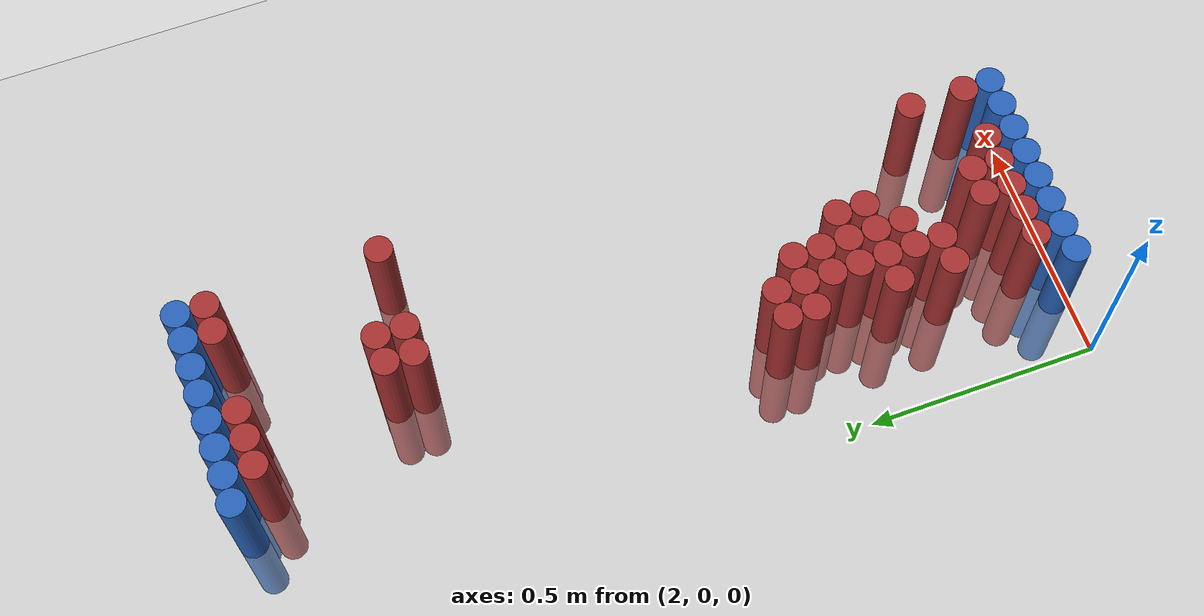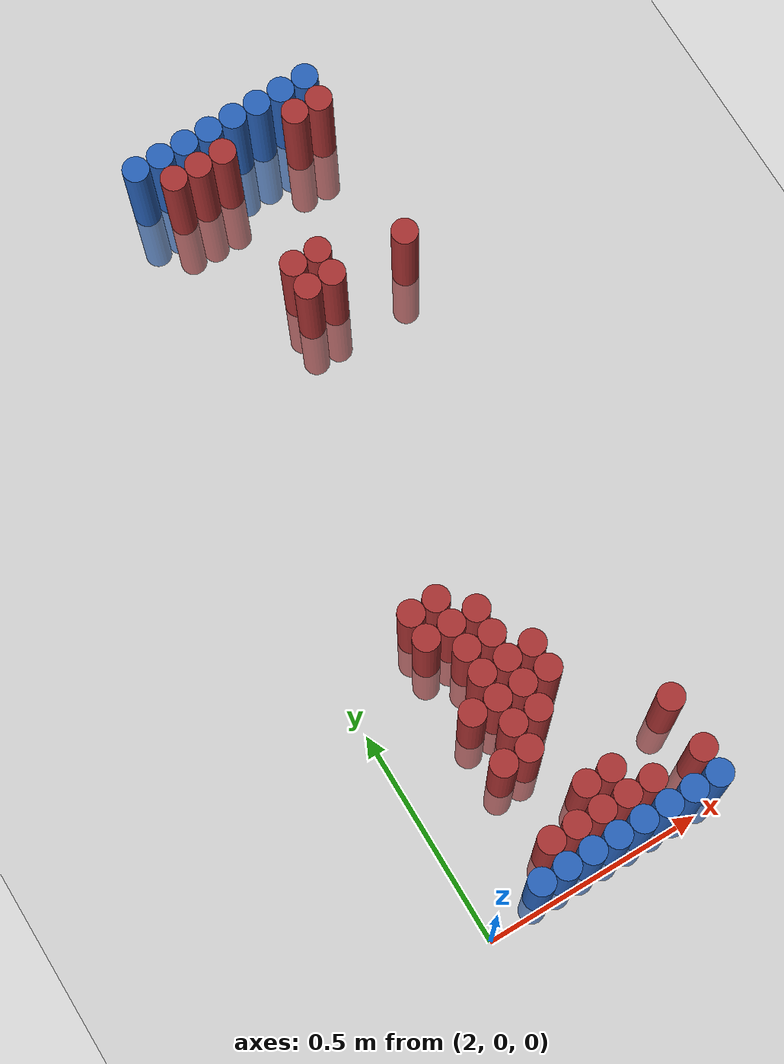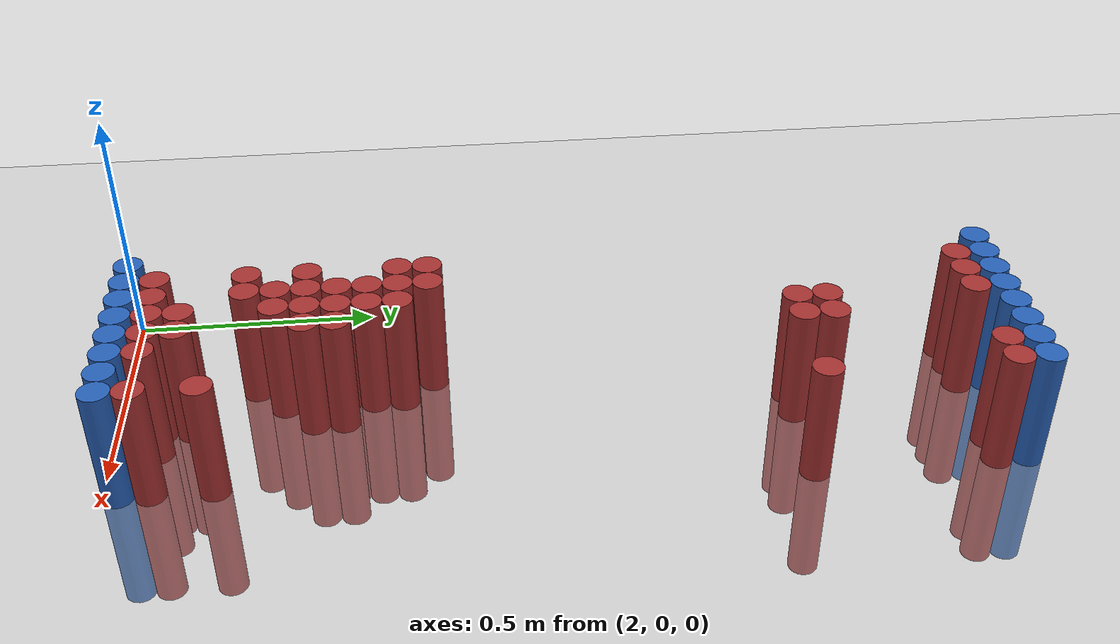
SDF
<sdf version="1.6">
 <world name="default">
  <model name="ground_plane">
   <static>1</static>
   <link name="link">
    <collision name="collision">
     <geometry><plane><normal>0 0 1</normal><size>100 100</size></plane></geometry>
     <surface><friction><ode><mu>100</mu><mu2>50</mu2></ode></friction></surface>
    </collision>
    <visual name="visual">
     <cast_shadows>0</cast_shadows>
     <geometry><plane><normal>0 0 1</normal><size>100 100</size></plane></geometry>
     <material>
      <script><uri>file://media/materials/scripts/gazebo.material</uri><name>Gazebo/Grey</name></script>
     </material>
    </visual>
   </link>
  </model>
  <model name="unit_cylinder_97">
   <static>1</static>
   <pose>2.190000 1.770000 0.000000 0.000000 0.000000 0.000000</pose>
   <link name="link">
    <inertial>
     <mass>1</mass>
     <inertia><ixx>0.145833</ixx><ixy>0</ixy><ixz>0</ixz><iyy>0.145833</iyy><iyz>0</iyz><izz>0.125</izz></inertia>
    </inertial>
    <collision name="collision">
     <geometry><cylinder><radius>0.030000</radius><length>0.5</length></cylinder></geometry>
    </collision>
    <visual name="visual">
     <geometry><cylinder><radius>0.030000</radius><length>0.5</length></cylinder></geometry>
     <material>
      <ambient>0.152000 0.379000 0.720000 1</ambient>
      <diffuse>0.152000 0.379000 0.720000 1</diffuse>
     </material>
     <material>
      <script><name>Gazebo/Grey</name><uri>file://media/materials/scripts/gazebo.material</uri></script>
     </material>
    </visual>
   </link>
  </model>
  <model name="unit_cylinder_98">
   <static>1</static>
   <pose>2.250000 1.770000 0.000000 0.000000 0.000000 0.000000</pose>
   <link name="link">
    <inertial>
     <mass>1</mass>
     <inertia><ixx>0.145833</ixx><ixy>0</ixy><ixz>0</ixz><iyy>0.145833</iyy><iyz>0</iyz><izz>0.125</izz></inertia>
    </inertial>
    <collision name="collision">
     <geometry><cylinder><radius>0.030000</radius><length>0.5</length></cylinder></geometry>
    </collision>
    <visual name="visual">
     <geometry><cylinder><radius>0.030000</radius><length>0.5</length></cylinder></geometry>
     <material>
      <ambient>0.152000 0.379000 0.720000 1</ambient>
      <diffuse>0.152000 0.379000 0.720000 1</diffuse>
     </material>
     <material>
      <script><name>Gazebo/Grey</name><uri>file://media/materials/scripts/gazebo.material</uri></script>
     </material>
    </visual>
   </link>
  </model>
  <model name="unit_cylinder_99">
   <static>1</static>
   <pose>2.310000 1.770000 0.000000 0.000000 0.000000 0.000000</pose>
   <link name="link">
    <inertial>
     <mass>1</mass>
     <inertia><ixx>0.145833</ixx><ixy>0</ixy><ixz>0</ixz><iyy>0.145833</iyy><iyz>0</iyz><izz>0.125</izz></inertia>
    </inertial>
    <collision name="collision">
     <geometry><cylinder><radius>0.030000</radius><length>0.5</length></cylinder></geometry>
    </collision>
    <visual name="visual">
     <geometry><cylinder><radius>0.030000</radius><length>0.5</length></cylinder></geometry>
     <material>
      <ambient>0.152000 0.379000 0.720000 1</ambient>
      <diffuse>0.152000 0.379000 0.720000 1</diffuse>
     </material>
     <material>
      <script><name>Gazebo/Grey</name><uri>file://media/materials/scripts/gazebo.material</uri></script>
     </material>
    </visual>
   </link>
  </model>
  <model name="unit_cylinder_100">
   <static>1</static>
   <pose>2.370000 1.770000 0.000000 0.000000 0.000000 0.000000</pose>
   <link name="link">
    <inertial>
     <mass>1</mass>
     <inertia><ixx>0.145833</ixx><ixy>0</ixy><ixz>0</ixz><iyy>0.145833</iyy><iyz>0</iyz><izz>0.125</izz></inertia>
    </inertial>
    <collision name="collision">
     <geometry><cylinder><radius>0.030000</radius><length>0.5</length></cylinder></geometry>
    </collision>
    <visual name="visual">
     <geometry><cylinder><radius>0.030000</radius><length>0.5</length></cylinder></geometry>
     <material>
      <ambient>0.152000 0.379000 0.720000 1</ambient>
      <diffuse>0.152000 0.379000 0.720000 1</diffuse>
     </material>
     <material>
      <script><name>Gazebo/Grey</name><uri>file://media/materials/scripts/gazebo.material</uri></script>
     </material>
    </visual>
   </link>
  </model>
  <model name="unit_cylinder_101">
   <static>1</static>
   <pose>2.430000 1.770000 0.000000 0.000000 0.000000 0.000000</pose>
   <link name="link">
    <inertial>
     <mass>1</mass>
     <inertia><ixx>0.145833</ixx><ixy>0</ixy><ixz>0</ixz><iyy>0.145833</iyy><iyz>0</iyz><izz>0.125</izz></inertia>
    </inertial>
    <collision name="collision">
     <geometry><cylinder><radius>0.030000</radius><length>0.5</length></cylinder></geometry>
    </collision>
    <visual name="visual">
     <geometry><cylinder><radius>0.030000</radius><length>0.5</length></cylinder></geometry>
     <material>
      <ambient>0.152000 0.379000 0.720000 1</ambient>
      <diffuse>0.152000 0.379000 0.720000 1</diffuse>
     </material>
     <material>
      <script><name>Gazebo/Grey</name><uri>file://media/materials/scripts/gazebo.material</uri></script>
     </material>
    </visual>
   </link>
  </model>
  <model name="unit_cylinder_102">
   <static>1</static>
   <pose>2.490000 1.770000 0.000000 0.000000 0.000000 0.000000</pose>
   <link name="link">
    <inertial>
     <mass>1</mass>
     <inertia><ixx>0.145833</ixx><ixy>0</ixy><ixz>0</ixz><iyy>0.145833</iyy><iyz>0</iyz><izz>0.125</izz></inertia>
    </inertial>
    <collision name="collision">
     <geometry><cylinder><radius>0.030000</radius><length>0.5</length></cylinder></geometry>
    </collision>
    <visual name="visual">
     <geometry><cylinder><radius>0.030000</radius><length>0.5</length></cylinder></geometry>
     <material>
      <ambient>0.152000 0.379000 0.720000 1</ambient>
      <diffuse>0.152000 0.379000 0.720000 1</diffuse>
     </material>
     <material>
      <script><name>Gazebo/Grey</name><uri>file://media/materials/scripts/gazebo.material</uri></script>
     </material>
    </visual>
   </link>
  </model>
  <model name="unit_cylinder_103">
   <static>1</static>
   <pose>2.550000 1.770000 0.000000 0.000000 0.000000 0.000000</pose>
   <link name="link">
    <inertial>
     <mass>1</mass>
     <inertia><ixx>0.145833</ixx><ixy>0</ixy><ixz>0</ixz><iyy>0.145833</iyy><iyz>0</iyz><izz>0.125</izz></inertia>
    </inertial>
    <collision name="collision">
     <geometry><cylinder><radius>0.030000</radius><length>0.5</length></cylinder></geometry>
    </collision>
    <visual name="visual">
     <geometry><cylinder><radius>0.030000</radius><length>0.5</length></cylinder></geometry>
     <material>
      <ambient>0.152000 0.379000 0.720000 1</ambient>
      <diffuse>0.152000 0.379000 0.720000 1</diffuse>
     </material>
     <material>
      <script><name>Gazebo/Grey</name><uri>file://media/materials/scripts/gazebo.material</uri></script>
     </material>
    </visual>
   </link>
  </model>
  <model name="unit_cylinder_104">
   <static>1</static>
   <pose>2.610000 1.770000 0.000000 0.000000 0.000000 0.000000</pose>
   <link name="link">
    <inertial>
     <mass>1</mass>
     <inertia><ixx>0.145833</ixx><ixy>0</ixy><ixz>0</ixz><iyy>0.145833</iyy><iyz>0</iyz><izz>0.125</izz></inertia>
    </inertial>
    <collision name="collision">
     <geometry><cylinder><radius>0.030000</radius><length>0.5</length></cylinder></geometry>
    </collision>
    <visual name="visual">
     <geometry><cylinder><radius>0.030000</radius><length>0.5</length></cylinder></geometry>
     <material>
      <ambient>0.152000 0.379000 0.720000 1</ambient>
      <diffuse>0.152000 0.379000 0.720000 1</diffuse>
     </material>
     <material>
      <script><name>Gazebo/Grey</name><uri>file://media/materials/scripts/gazebo.material</uri></script>
     </material>
    </visual>
   </link>
  </model>
  <model name="unit_cylinder_125">
   <static>1</static>
   <pose>2.250000 1.710000 0.000000 0.000000 0.000000 0.000000</pose>
   <link name="link">
    <inertial>
     <mass>1</mass>
     <inertia><ixx>0.145833</ixx><ixy>0</ixy><ixz>0</ixz><iyy>0.145833</iyy><iyz>0</iyz><izz>0.125</izz></inertia>
    </inertial>
    <collision name="collision">
     <geometry><cylinder><radius>0.030000</radius><length>0.5</length></cylinder></geometry>
    </collision>
    <visual name="visual">
     <geometry><cylinder><radius>0.030000</radius><length>0.5</length></cylinder></geometry>
     <material>
      <ambient>0.648000 0.192000 0.192000 1</ambient>
      <diffuse>0.648000 0.192000 0.192000 1</diffuse>
     </material>
     <material>
      <script><name>Gazebo/Grey</name><uri>file://media/materials/scripts/gazebo.material</uri></script>
     </material>
    </visual>
   </link>
  </model>
  <model name="unit_cylinder_126">
   <static>1</static>
   <pose>2.310000 1.710000 0.000000 0.000000 0.000000 0.000000</pose>
   <link name="link">
    <inertial>
     <mass>1</mass>
     <inertia><ixx>0.145833</ixx><ixy>0</ixy><ixz>0</ixz><iyy>0.145833</iyy><iyz>0</iyz><izz>0.125</izz></inertia>
    </inertial>
    <collision name="collision">
     <geometry><cylinder><radius>0.030000</radius><length>0.5</length></cylinder></geometry>
    </collision>
    <visual name="visual">
     <geometry><cylinder><radius>0.030000</radius><length>0.5</length></cylinder></geometry>
     <material>
      <ambient>0.648000 0.192000 0.192000 1</ambient>
      <diffuse>0.648000 0.192000 0.192000 1</diffuse>
     </material>
     <material>
      <script><name>Gazebo/Grey</name><uri>file://media/materials/scripts/gazebo.material</uri></script>
     </material>
    </visual>
   </link>
  </model>
  <model name="unit_cylinder_127">
   <static>1</static>
   <pose>2.370000 1.710000 0.000000 0.000000 0.000000 0.000000</pose>
   <link name="link">
    <inertial>
     <mass>1</mass>
     <inertia><ixx>0.145833</ixx><ixy>0</ixy><ixz>0</ixz><iyy>0.145833</iyy><iyz>0</iyz><izz>0.125</izz></inertia>
    </inertial>
    <collision name="collision">
     <geometry><cylinder><radius>0.030000</radius><length>0.5</length></cylinder></geometry>
    </collision>
    <visual name="visual">
     <geometry><cylinder><radius>0.030000</radius><length>0.5</length></cylinder></geometry>
     <material>
      <ambient>0.648000 0.192000 0.192000 1</ambient>
      <diffuse>0.648000 0.192000 0.192000 1</diffuse>
     </material>
     <material>
      <script><name>Gazebo/Grey</name><uri>file://media/materials/scripts/gazebo.material</uri></script>
     </material>
    </visual>
   </link>
  </model>
  <model name="unit_cylinder_128">
   <static>1</static>
   <pose>2.550000 1.710000 0.000000 0.000000 0.000000 0.000000</pose>
   <link name="link">
    <inertial>
     <mass>1</mass>
     <inertia><ixx>0.145833</ixx><ixy>0</ixy><ixz>0</ixz><iyy>0.145833</iyy><iyz>0</iyz><izz>0.125</izz></inertia>
    </inertial>
    <collision name="collision">
     <geometry><cylinder><radius>0.030000</radius><length>0.5</length></cylinder></geometry>
    </collision>
    <visual name="visual">
     <geometry><cylinder><radius>0.030000</radius><length>0.5</length></cylinder></geometry>
     <material>
      <ambient>0.648000 0.192000 0.192000 1</ambient>
      <diffuse>0.648000 0.192000 0.192000 1</diffuse>
     </material>
     <material>
      <script><name>Gazebo/Grey</name><uri>file://media/materials/scripts/gazebo.material</uri></script>
     </material>
    </visual>
   </link>
  </model>
  <model name="unit_cylinder_129">
   <static>1</static>
   <pose>2.610000 1.710000 0.000000 0.000000 0.000000 0.000000</pose>
   <link name="link">
    <inertial>
     <mass>1</mass>
     <inertia><ixx>0.145833</ixx><ixy>0</ixy><ixz>0</ixz><iyy>0.145833</iyy><iyz>0</iyz><izz>0.125</izz></inertia>
    </inertial>
    <collision name="collision">
     <geometry><cylinder><radius>0.030000</radius><length>0.5</length></cylinder></geometry>
    </collision>
    <visual name="visual">
     <geometry><cylinder><radius>0.030000</radius><length>0.5</length></cylinder></geometry>
     <material>
      <ambient>0.648000 0.192000 0.192000 1</ambient>
      <diffuse>0.648000 0.192000 0.192000 1</diffuse>
     </material>
     <material>
      <script><name>Gazebo/Grey</name><uri>file://media/materials/scripts/gazebo.material</uri></script>
     </material>
    </visual>
   </link>
  </model>
  <model name="unit_cylinder_163">
   <static>1</static>
   <pose>2.370000 1.410000 0.000000 0.000000 0.000000 0.000000</pose>
   <link name="link">
    <inertial>
     <mass>1</mass>
     <inertia><ixx>0.145833</ixx><ixy>0</ixy><ixz>0</ixz><iyy>0.145833</iyy><iyz>0</iyz><izz>0.125</izz></inertia>
    </inertial>
    <collision name="collision">
     <geometry><cylinder><radius>0.030000</radius><length>0.5</length></cylinder></geometry>
    </collision>
    <visual name="visual">
     <geometry><cylinder><radius>0.030000</radius><length>0.5</length></cylinder></geometry>
     <material>
      <ambient>0.648000 0.192000 0.192000 1</ambient>
      <diffuse>0.648000 0.192000 0.192000 1</diffuse>
     </material>
     <material>
      <script><name>Gazebo/Grey</name><uri>file://media/materials/scripts/gazebo.material</uri></script>
     </material>
    </visual>
   </link>
  </model>
  <model name="unit_cylinder_164">
   <static>1</static>
   <pose>2.430000 1.410000 0.000000 0.000000 0.000000 0.000000</pose>
   <link name="link">
    <inertial>
     <mass>1</mass>
     <inertia><ixx>0.145833</ixx><ixy>0</ixy><ixz>0</ixz><iyy>0.145833</iyy><iyz>0</iyz><izz>0.125</izz></inertia>
    </inertial>
    <collision name="collision">
     <geometry><cylinder><radius>0.030000</radius><length>0.5</length></cylinder></geometry>
    </collision>
    <visual name="visual">
     <geometry><cylinder><radius>0.030000</radius><length>0.5</length></cylinder></geometry>
     <material>
      <ambient>0.648000 0.192000 0.192000 1</ambient>
      <diffuse>0.648000 0.192000 0.192000 1</diffuse>
     </material>
     <material>
      <script><name>Gazebo/Grey</name><uri>file://media/materials/scripts/gazebo.material</uri></script>
     </material>
    </visual>
   </link>
  </model>
  <model name="unit_cylinder_168">
   <static>1</static>
   <pose>2.370000 1.350000 0.000000 0.000000 0.000000 0.000000</pose>
   <link name="link">
    <inertial>
     <mass>1</mass>
     <inertia><ixx>0.145833</ixx><ixy>0</ixy><ixz>0</ixz><iyy>0.145833</iyy><iyz>0</iyz><izz>0.125</izz></inertia>
    </inertial>
    <collision name="collision">
     <geometry><cylinder><radius>0.030000</radius><length>0.5</length></cylinder></geometry>
    </collision>
    <visual name="visual">
     <geometry><cylinder><radius>0.030000</radius><length>0.5</length></cylinder></geometry>
     <material>
      <ambient>0.648000 0.192000 0.192000 1</ambient>
      <diffuse>0.648000 0.192000 0.192000 1</diffuse>
     </material>
     <material>
      <script><name>Gazebo/Grey</name><uri>file://media/materials/scripts/gazebo.material</uri></script>
     </material>
    </visual>
   </link>
  </model>
  <model name="unit_cylinder_169">
   <static>1</static>
   <pose>2.430000 1.350000 0.000000 0.000000 0.000000 0.000000</pose>
   <link name="link">
    <inertial>
     <mass>1</mass>
     <inertia><ixx>0.145833</ixx><ixy>0</ixy><ixz>0</ixz><iyy>0.145833</iyy><iyz>0</iyz><izz>0.125</izz></inertia>
    </inertial>
    <collision name="collision">
     <geometry><cylinder><radius>0.030000</radius><length>0.5</length></cylinder></geometry>
    </collision>
    <visual name="visual">
     <geometry><cylinder><radius>0.030000</radius><length>0.5</length></cylinder></geometry>
     <material>
      <ambient>0.648000 0.192000 0.192000 1</ambient>
      <diffuse>0.648000 0.192000 0.192000 1</diffuse>
     </material>
     <material>
      <script><name>Gazebo/Grey</name><uri>file://media/materials/scripts/gazebo.material</uri></script>
     </material>
    </visual>
   </link>
  </model>
  <model name="unit_cylinder_170">
   <static>1</static>
   <pose>2.610000 1.350000 0.000000 0.000000 0.000000 0.000000</pose>
   <link name="link">
    <inertial>
     <mass>1</mass>
     <inertia><ixx>0.145833</ixx><ixy>0</ixy><ixz>0</ixz><iyy>0.145833</iyy><iyz>0</iyz><izz>0.125</izz></inertia>
    </inertial>
    <collision name="collision">
     <geometry><cylinder><radius>0.030000</radius><length>0.5</length></cylinder></geometry>
    </collision>
    <visual name="visual">
     <geometry><cylinder><radius>0.030000</radius><length>0.5</length></cylinder></geometry>
     <material>
      <ambient>0.648000 0.192000 0.192000 1</ambient>
      <diffuse>0.648000 0.192000 0.192000 1</diffuse>
     </material>
     <material>
      <script><name>Gazebo/Grey</name><uri>file://media/materials/scripts/gazebo.material</uri></script>
     </material>
    </visual>
   </link>
  </model>
  <model name="unit_cylinder_197">
   <static>1</static>
   <pose>2.190000 0.630000 0.000000 0.000000 0.000000 0.000000</pose>
   <link name="link">
    <inertial>
     <mass>1</mass>
     <inertia><ixx>0.145833</ixx><ixy>0</ixy><ixz>0</ixz><iyy>0.145833</iyy><iyz>0</iyz><izz>0.125</izz></inertia>
    </inertial>
    <collision name="collision">
     <geometry><cylinder><radius>0.030000</radius><length>0.5</length></cylinder></geometry>
    </collision>
    <visual name="visual">
     <geometry><cylinder><radius>0.030000</radius><length>0.5</length></cylinder></geometry>
     <material>
      <ambient>0.648000 0.192000 0.192000 1</ambient>
      <diffuse>0.648000 0.192000 0.192000 1</diffuse>
     </material>
     <material>
      <script><name>Gazebo/Grey</name><uri>file://media/materials/scripts/gazebo.material</uri></script>
     </material>
    </visual>
   </link>
  </model>
  <model name="unit_cylinder_198">
   <static>1</static>
   <pose>2.250000 0.630000 0.000000 0.000000 0.000000 0.000000</pose>
   <link name="link">
    <inertial>
     <mass>1</mass>
     <inertia><ixx>0.145833</ixx><ixy>0</ixy><ixz>0</ixz><iyy>0.145833</iyy><iyz>0</iyz><izz>0.125</izz></inertia>
    </inertial>
    <collision name="collision">
     <geometry><cylinder><radius>0.030000</radius><length>0.5</length></cylinder></geometry>
    </collision>
    <visual name="visual">
     <geometry><cylinder><radius>0.030000</radius><length>0.5</length></cylinder></geometry>
     <material>
      <ambient>0.648000 0.192000 0.192000 1</ambient>
      <diffuse>0.648000 0.192000 0.192000 1</diffuse>
     </material>
     <material>
      <script><name>Gazebo/Grey</name><uri>file://media/materials/scripts/gazebo.material</uri></script>
     </material>
    </visual>
   </link>
  </model>
  <model name="unit_cylinder_199">
   <static>1</static>
   <pose>2.190000 0.570000 0.000000 0.000000 0.000000 0.000000</pose>
   <link name="link">
    <inertial>
     <mass>1</mass>
     <inertia><ixx>0.145833</ixx><ixy>0</ixy><ixz>0</ixz><iyy>0.145833</iyy><iyz>0</iyz><izz>0.125</izz></inertia>
    </inertial>
    <collision name="collision">
     <geometry><cylinder><radius>0.030000</radius><length>0.5</length></cylinder></geometry>
    </collision>
    <visual name="visual">
     <geometry><cylinder><radius>0.030000</radius><length>0.5</length></cylinder></geometry>
     <material>
      <ambient>0.648000 0.192000 0.192000 1</ambient>
      <diffuse>0.648000 0.192000 0.192000 1</diffuse>
     </material>
     <material>
      <script><name>Gazebo/Grey</name><uri>file://media/materials/scripts/gazebo.material</uri></script>
     </material>
    </visual>
   </link>
  </model>
  <model name="unit_cylinder_200">
   <static>1</static>
   <pose>2.250000 0.570000 0.000000 0.000000 0.000000 0.000000</pose>
   <link name="link">
    <inertial>
     <mass>1</mass>
     <inertia><ixx>0.145833</ixx><ixy>0</ixy><ixz>0</ixz><iyy>0.145833</iyy><iyz>0</iyz><izz>0.125</izz></inertia>
    </inertial>
    <collision name="collision">
     <geometry><cylinder><radius>0.030000</radius><length>0.5</length></cylinder></geometry>
    </collision>
    <visual name="visual">
     <geometry><cylinder><radius>0.030000</radius><length>0.5</length></cylinder></geometry>
     <material>
      <ambient>0.648000 0.192000 0.192000 1</ambient>
      <diffuse>0.648000 0.192000 0.192000 1</diffuse>
     </material>
     <material>
      <script><name>Gazebo/Grey</name><uri>file://media/materials/scripts/gazebo.material</uri></script>
     </material>
    </visual>
   </link>
  </model>
  <model name="unit_cylinder_201">
   <static>1</static>
   <pose>2.310000 0.570000 0.000000 0.000000 0.000000 0.000000</pose>
   <link name="link">
    <inertial>
     <mass>1</mass>
     <inertia><ixx>0.145833</ixx><ixy>0</ixy><ixz>0</ixz><iyy>0.145833</iyy><iyz>0</iyz><izz>0.125</izz></inertia>
    </inertial>
    <collision name="collision">
     <geometry><cylinder><radius>0.030000</radius><length>0.5</length></cylinder></geometry>
    </collision>
    <visual name="visual">
     <geometry><cylinder><radius>0.030000</radius><length>0.5</length></cylinder></geometry>
     <material>
      <ambient>0.648000 0.192000 0.192000 1</ambient>
      <diffuse>0.648000 0.192000 0.192000 1</diffuse>
     </material>
     <material>
      <script><name>Gazebo/Grey</name><uri>file://media/materials/scripts/gazebo.material</uri></script>
     </material>
    </visual>
   </link>
  </model>
  <model name="unit_cylinder_204">
   <static>1</static>
   <pose>2.250000 0.510000 0.000000 0.000000 0.000000 0.000000</pose>
   <link name="link">
    <inertial>
     <mass>1</mass>
     <inertia><ixx>0.145833</ixx><ixy>0</ixy><ixz>0</ixz><iyy>0.145833</iyy><iyz>0</iyz><izz>0.125</izz></inertia>
    </inertial>
    <collision name="collision">
     <geometry><cylinder><radius>0.030000</radius><length>0.5</length></cylinder></geometry>
    </collision>
    <visual name="visual">
     <geometry><cylinder><radius>0.030000</radius><length>0.5</length></cylinder></geometry>
     <material>
      <ambient>0.648000 0.192000 0.192000 1</ambient>
      <diffuse>0.648000 0.192000 0.192000 1</diffuse>
     </material>
     <material>
      <script><name>Gazebo/Grey</name><uri>file://media/materials/scripts/gazebo.material</uri></script>
     </material>
    </visual>
   </link>
  </model>
  <model name="unit_cylinder_205">
   <static>1</static>
   <pose>2.310000 0.510000 0.000000 0.000000 0.000000 0.000000</pose>
   <link name="link">
    <inertial>
     <mass>1</mass>
     <inertia><ixx>0.145833</ixx><ixy>0</ixy><ixz>0</ixz><iyy>0.145833</iyy><iyz>0</iyz><izz>0.125</izz></inertia>
    </inertial>
    <collision name="collision">
     <geometry><cylinder><radius>0.030000</radius><length>0.5</length></cylinder></geometry>
    </collision>
    <visual name="visual">
     <geometry><cylinder><radius>0.030000</radius><length>0.5</length></cylinder></geometry>
     <material>
      <ambient>0.648000 0.192000 0.192000 1</ambient>
      <diffuse>0.648000 0.192000 0.192000 1</diffuse>
     </material>
     <material>
      <script><name>Gazebo/Grey</name><uri>file://media/materials/scripts/gazebo.material</uri></script>
     </material>
    </visual>
   </link>
  </model>
  <model name="unit_cylinder_212">
   <static>1</static>
   <pose>2.250000 0.450000 0.000000 0.000000 0.000000 0.000000</pose>
   <link name="link">
    <inertial>
     <mass>1</mass>
     <inertia><ixx>0.145833</ixx><ixy>0</ixy><ixz>0</ixz><iyy>0.145833</iyy><iyz>0</iyz><izz>0.125</izz></inertia>
    </inertial>
    <collision name="collision">
     <geometry><cylinder><radius>0.030000</radius><length>0.5</length></cylinder></geometry>
    </collision>
    <visual name="visual">
     <geometry><cylinder><radius>0.030000</radius><length>0.5</length></cylinder></geometry>
     <material>
      <ambient>0.648000 0.192000 0.192000 1</ambient>
      <diffuse>0.648000 0.192000 0.192000 1</diffuse>
     </material>
     <material>
      <script><name>Gazebo/Grey</name><uri>file://media/materials/scripts/gazebo.material</uri></script>
     </material>
    </visual>
   </link>
  </model>
  <model name="unit_cylinder_213">
   <static>1</static>
   <pose>2.310000 0.450000 0.000000 0.000000 0.000000 0.000000</pose>
   <link name="link">
    <inertial>
     <mass>1</mass>
     <inertia><ixx>0.145833</ixx><ixy>0</ixy><ixz>0</ixz><iyy>0.145833</iyy><iyz>0</iyz><izz>0.125</izz></inertia>
    </inertial>
    <collision name="collision">
     <geometry><cylinder><radius>0.030000</radius><length>0.5</length></cylinder></geometry>
    </collision>
    <visual name="visual">
     <geometry><cylinder><radius>0.030000</radius><length>0.5</length></cylinder></geometry>
     <material>
      <ambient>0.648000 0.192000 0.192000 1</ambient>
      <diffuse>0.648000 0.192000 0.192000 1</diffuse>
     </material>
     <material>
      <script><name>Gazebo/Grey</name><uri>file://media/materials/scripts/gazebo.material</uri></script>
     </material>
    </visual>
   </link>
  </model>
  <model name="unit_cylinder_214">
   <static>1</static>
   <pose>2.370000 0.450000 0.000000 0.000000 0.000000 0.000000</pose>
   <link name="link">
    <inertial>
     <mass>1</mass>
     <inertia><ixx>0.145833</ixx><ixy>0</ixy><ixz>0</ixz><iyy>0.145833</iyy><iyz>0</iyz><izz>0.125</izz></inertia>
    </inertial>
    <collision name="collision">
     <geometry><cylinder><radius>0.030000</radius><length>0.5</length></cylinder></geometry>
    </collision>
    <visual name="visual">
     <geometry><cylinder><radius>0.030000</radius><length>0.5</length></cylinder></geometry>
     <material>
      <ambient>0.648000 0.192000 0.192000 1</ambient>
      <diffuse>0.648000 0.192000 0.192000 1</diffuse>
     </material>
     <material>
      <script><name>Gazebo/Grey</name><uri>file://media/materials/scripts/gazebo.material</uri></script>
     </material>
    </visual>
   </link>
  </model>
  <model name="unit_cylinder_223">
   <static>1</static>
   <pose>2.190000 0.390000 0.000000 0.000000 0.000000 0.000000</pose>
   <link name="link">
    <inertial>
     <mass>1</mass>
     <inertia><ixx>0.145833</ixx><ixy>0</ixy><ixz>0</ixz><iyy>0.145833</iyy><iyz>0</iyz><izz>0.125</izz></inertia>
    </inertial>
    <collision name="collision">
     <geometry><cylinder><radius>0.030000</radius><length>0.5</length></cylinder></geometry>
    </collision>
    <visual name="visual">
     <geometry><cylinder><radius>0.030000</radius><length>0.5</length></cylinder></geometry>
     <material>
      <ambient>0.648000 0.192000 0.192000 1</ambient>
      <diffuse>0.648000 0.192000 0.192000 1</diffuse>
     </material>
     <material>
      <script><name>Gazebo/Grey</name><uri>file://media/materials/scripts/gazebo.material</uri></script>
     </material>
    </visual>
   </link>
  </model>
  <model name="unit_cylinder_224">
   <static>1</static>
   <pose>2.250000 0.390000 0.000000 0.000000 0.000000 0.000000</pose>
   <link name="link">
    <inertial>
     <mass>1</mass>
     <inertia><ixx>0.145833</ixx><ixy>0</ixy><ixz>0</ixz><iyy>0.145833</iyy><iyz>0</iyz><izz>0.125</izz></inertia>
    </inertial>
    <collision name="collision">
     <geometry><cylinder><radius>0.030000</radius><length>0.5</length></cylinder></geometry>
    </collision>
    <visual name="visual">
     <geometry><cylinder><radius>0.030000</radius><length>0.5</length></cylinder></geometry>
     <material>
      <ambient>0.648000 0.192000 0.192000 1</ambient>
      <diffuse>0.648000 0.192000 0.192000 1</diffuse>
     </material>
     <material>
      <script><name>Gazebo/Grey</name><uri>file://media/materials/scripts/gazebo.material</uri></script>
     </material>
    </visual>
   </link>
  </model>
  <model name="unit_cylinder_225">
   <static>1</static>
   <pose>2.310000 0.390000 0.000000 0.000000 0.000000 0.000000</pose>
   <link name="link">
    <inertial>
     <mass>1</mass>
     <inertia><ixx>0.145833</ixx><ixy>0</ixy><ixz>0</ixz><iyy>0.145833</iyy><iyz>0</iyz><izz>0.125</izz></inertia>
    </inertial>
    <collision name="collision">
     <geometry><cylinder><radius>0.030000</radius><length>0.5</length></cylinder></geometry>
    </collision>
    <visual name="visual">
     <geometry><cylinder><radius>0.030000</radius><length>0.5</length></cylinder></geometry>
     <material>
      <ambient>0.648000 0.192000 0.192000 1</ambient>
      <diffuse>0.648000 0.192000 0.192000 1</diffuse>
     </material>
     <material>
      <script><name>Gazebo/Grey</name><uri>file://media/materials/scripts/gazebo.material</uri></script>
     </material>
    </visual>
   </link>
  </model>
  <model name="unit_cylinder_226">
   <static>1</static>
   <pose>2.370000 0.390000 0.000000 0.000000 0.000000 0.000000</pose>
   <link name="link">
    <inertial>
     <mass>1</mass>
     <inertia><ixx>0.145833</ixx><ixy>0</ixy><ixz>0</ixz><iyy>0.145833</iyy><iyz>0</iyz><izz>0.125</izz></inertia>
    </inertial>
    <collision name="collision">
     <geometry><cylinder><radius>0.030000</radius><length>0.5</length></cylinder></geometry>
    </collision>
    <visual name="visual">
     <geometry><cylinder><radius>0.030000</radius><length>0.5</length></cylinder></geometry>
     <material>
      <ambient>0.648000 0.192000 0.192000 1</ambient>
      <diffuse>0.648000 0.192000 0.192000 1</diffuse>
     </material>
     <material>
      <script><name>Gazebo/Grey</name><uri>file://media/materials/scripts/gazebo.material</uri></script>
     </material>
    </visual>
   </link>
  </model>
  <model name="unit_cylinder_235">
   <static>1</static>
   <pose>2.250000 0.330000 0.000000 0.000000 0.000000 0.000000</pose>
   <link name="link">
    <inertial>
     <mass>1</mass>
     <inertia><ixx>0.145833</ixx><ixy>0</ixy><ixz>0</ixz><iyy>0.145833</iyy><iyz>0</iyz><izz>0.125</izz></inertia>
    </inertial>
    <collision name="collision">
     <geometry><cylinder><radius>0.030000</radius><length>0.5</length></cylinder></geometry>
    </collision>
    <visual name="visual">
     <geometry><cylinder><radius>0.030000</radius><length>0.5</length></cylinder></geometry>
     <material>
      <ambient>0.648000 0.192000 0.192000 1</ambient>
      <diffuse>0.648000 0.192000 0.192000 1</diffuse>
     </material>
     <material>
      <script><name>Gazebo/Grey</name><uri>file://media/materials/scripts/gazebo.material</uri></script>
     </material>
    </visual>
   </link>
  </model>
  <model name="unit_cylinder_236">
   <static>1</static>
   <pose>2.310000 0.330000 0.000000 0.000000 0.000000 0.000000</pose>
   <link name="link">
    <inertial>
     <mass>1</mass>
     <inertia><ixx>0.145833</ixx><ixy>0</ixy><ixz>0</ixz><iyy>0.145833</iyy><iyz>0</iyz><izz>0.125</izz></inertia>
    </inertial>
    <collision name="collision">
     <geometry><cylinder><radius>0.030000</radius><length>0.5</length></cylinder></geometry>
    </collision>
    <visual name="visual">
     <geometry><cylinder><radius>0.030000</radius><length>0.5</length></cylinder></geometry>
     <material>
      <ambient>0.648000 0.192000 0.192000 1</ambient>
      <diffuse>0.648000 0.192000 0.192000 1</diffuse>
     </material>
     <material>
      <script><name>Gazebo/Grey</name><uri>file://media/materials/scripts/gazebo.material</uri></script>
     </material>
    </visual>
   </link>
  </model>
  <model name="unit_cylinder_244">
   <static>1</static>
   <pose>2.190000 0.270000 0.000000 0.000000 0.000000 0.000000</pose>
   <link name="link">
    <inertial>
     <mass>1</mass>
     <inertia><ixx>0.145833</ixx><ixy>0</ixy><ixz>0</ixz><iyy>0.145833</iyy><iyz>0</iyz><izz>0.125</izz></inertia>
    </inertial>
    <collision name="collision">
     <geometry><cylinder><radius>0.030000</radius><length>0.5</length></cylinder></geometry>
    </collision>
    <visual name="visual">
     <geometry><cylinder><radius>0.030000</radius><length>0.5</length></cylinder></geometry>
     <material>
      <ambient>0.648000 0.192000 0.192000 1</ambient>
      <diffuse>0.648000 0.192000 0.192000 1</diffuse>
     </material>
     <material>
      <script><name>Gazebo/Grey</name><uri>file://media/materials/scripts/gazebo.material</uri></script>
     </material>
    </visual>
   </link>
  </model>
  <model name="unit_cylinder_245">
   <static>1</static>
   <pose>2.250000 0.270000 0.000000 0.000000 0.000000 0.000000</pose>
   <link name="link">
    <inertial>
     <mass>1</mass>
     <inertia><ixx>0.145833</ixx><ixy>0</ixy><ixz>0</ixz><iyy>0.145833</iyy><iyz>0</iyz><izz>0.125</izz></inertia>
    </inertial>
    <collision name="collision">
     <geometry><cylinder><radius>0.030000</radius><length>0.5</length></cylinder></geometry>
    </collision>
    <visual name="visual">
     <geometry><cylinder><radius>0.030000</radius><length>0.5</length></cylinder></geometry>
     <material>
      <ambient>0.648000 0.192000 0.192000 1</ambient>
      <diffuse>0.648000 0.192000 0.192000 1</diffuse>
     </material>
     <material>
      <script><name>Gazebo/Grey</name><uri>file://media/materials/scripts/gazebo.material</uri></script>
     </material>
    </visual>
   </link>
  </model>
  <model name="unit_cylinder_250">
   <static>1</static>
   <pose>2.550000 0.210000 0.000000 0.000000 0.000000 0.000000</pose>
   <link name="link">
    <inertial>
     <mass>1</mass>
     <inertia><ixx>0.145833</ixx><ixy>0</ixy><ixz>0</ixz><iyy>0.145833</iyy><iyz>0</iyz><izz>0.125</izz></inertia>
    </inertial>
    <collision name="collision">
     <geometry><cylinder><radius>0.030000</radius><length>0.5</length></cylinder></geometry>
    </collision>
    <visual name="visual">
     <geometry><cylinder><radius>0.030000</radius><length>0.5</length></cylinder></geometry>
     <material>
      <ambient>0.648000 0.192000 0.192000 1</ambient>
      <diffuse>0.648000 0.192000 0.192000 1</diffuse>
     </material>
     <material>
      <script><name>Gazebo/Grey</name><uri>file://media/materials/scripts/gazebo.material</uri></script>
     </material>
    </visual>
   </link>
  </model>
  <model name="unit_cylinder_255">
   <static>1</static>
   <pose>2.310000 0.150000 0.000000 0.000000 0.000000 0.000000</pose>
   <link name="link">
    <inertial>
     <mass>1</mass>
     <inertia><ixx>0.145833</ixx><ixy>0</ixy><ixz>0</ixz><iyy>0.145833</iyy><iyz>0</iyz><izz>0.125</izz></inertia>
    </inertial>
    <collision name="collision">
     <geometry><cylinder><radius>0.030000</radius><length>0.5</length></cylinder></geometry>
    </collision>
    <visual name="visual">
     <geometry><cylinder><radius>0.030000</radius><length>0.5</length></cylinder></geometry>
     <material>
      <ambient>0.648000 0.192000 0.192000 1</ambient>
      <diffuse>0.648000 0.192000 0.192000 1</diffuse>
     </material>
     <material>
      <script><name>Gazebo/Grey</name><uri>file://media/materials/scripts/gazebo.material</uri></script>
     </material>
    </visual>
   </link>
  </model>
  <model name="unit_cylinder_256">
   <static>1</static>
   <pose>2.370000 0.150000 0.000000 0.000000 0.000000 0.000000</pose>
   <link name="link">
    <inertial>
     <mass>1</mass>
     <inertia><ixx>0.145833</ixx><ixy>0</ixy><ixz>0</ixz><iyy>0.145833</iyy><iyz>0</iyz><izz>0.125</izz></inertia>
    </inertial>
    <collision name="collision">
     <geometry><cylinder><radius>0.030000</radius><length>0.5</length></cylinder></geometry>
    </collision>
    <visual name="visual">
     <geometry><cylinder><radius>0.030000</radius><length>0.5</length></cylinder></geometry>
     <material>
      <ambient>0.648000 0.192000 0.192000 1</ambient>
      <diffuse>0.648000 0.192000 0.192000 1</diffuse>
     </material>
     <material>
      <script><name>Gazebo/Grey</name><uri>file://media/materials/scripts/gazebo.material</uri></script>
     </material>
    </visual>
   </link>
  </model>
  <model name="unit_cylinder_263">
   <static>1</static>
   <pose>2.190000 0.090000 0.000000 0.000000 0.000000 0.000000</pose>
   <link name="link">
    <inertial>
     <mass>1</mass>
     <inertia><ixx>0.145833</ixx><ixy>0</ixy><ixz>0</ixz><iyy>0.145833</iyy><iyz>0</iyz><izz>0.125</izz></inertia>
    </inertial>
    <collision name="collision">
     <geometry><cylinder><radius>0.030000</radius><length>0.5</length></cylinder></geometry>
    </collision>
    <visual name="visual">
     <geometry><cylinder><radius>0.030000</radius><length>0.5</length></cylinder></geometry>
     <material>
      <ambient>0.648000 0.192000 0.192000 1</ambient>
      <diffuse>0.648000 0.192000 0.192000 1</diffuse>
     </material>
     <material>
      <script><name>Gazebo/Grey</name><uri>file://media/materials/scripts/gazebo.material</uri></script>
     </material>
    </visual>
   </link>
  </model>
  <model name="unit_cylinder_264">
   <static>1</static>
   <pose>2.250000 0.090000 0.000000 0.000000 0.000000 0.000000</pose>
   <link name="link">
    <inertial>
     <mass>1</mass>
     <inertia><ixx>0.145833</ixx><ixy>0</ixy><ixz>0</ixz><iyy>0.145833</iyy><iyz>0</iyz><izz>0.125</izz></inertia>
    </inertial>
    <collision name="collision">
     <geometry><cylinder><radius>0.030000</radius><length>0.5</length></cylinder></geometry>
    </collision>
    <visual name="visual">
     <geometry><cylinder><radius>0.030000</radius><length>0.5</length></cylinder></geometry>
     <material>
      <ambient>0.648000 0.192000 0.192000 1</ambient>
      <diffuse>0.648000 0.192000 0.192000 1</diffuse>
     </material>
     <material>
      <script><name>Gazebo/Grey</name><uri>file://media/materials/scripts/gazebo.material</uri></script>
     </material>
    </visual>
   </link>
  </model>
  <model name="unit_cylinder_265">
   <static>1</static>
   <pose>2.310000 0.090000 0.000000 0.000000 0.000000 0.000000</pose>
   <link name="link">
    <inertial>
     <mass>1</mass>
     <inertia><ixx>0.145833</ixx><ixy>0</ixy><ixz>0</ixz><iyy>0.145833</iyy><iyz>0</iyz><izz>0.125</izz></inertia>
    </inertial>
    <collision name="collision">
     <geometry><cylinder><radius>0.030000</radius><length>0.5</length></cylinder></geometry>
    </collision>
    <visual name="visual">
     <geometry><cylinder><radius>0.030000</radius><length>0.5</length></cylinder></geometry>
     <material>
      <ambient>0.648000 0.192000 0.192000 1</ambient>
      <diffuse>0.648000 0.192000 0.192000 1</diffuse>
     </material>
     <material>
      <script><name>Gazebo/Grey</name><uri>file://media/materials/scripts/gazebo.material</uri></script>
     </material>
    </visual>
   </link>
  </model>
  <model name="unit_cylinder_266">
   <static>1</static>
   <pose>2.370000 0.090000 0.000000 0.000000 0.000000 0.000000</pose>
   <link name="link">
    <inertial>
     <mass>1</mass>
     <inertia><ixx>0.145833</ixx><ixy>0</ixy><ixz>0</ixz><iyy>0.145833</iyy><iyz>0</iyz><izz>0.125</izz></inertia>
    </inertial>
    <collision name="collision">
     <geometry><cylinder><radius>0.030000</radius><length>0.5</length></cylinder></geometry>
    </collision>
    <visual name="visual">
     <geometry><cylinder><radius>0.030000</radius><length>0.5</length></cylinder></geometry>
     <material>
      <ambient>0.648000 0.192000 0.192000 1</ambient>
      <diffuse>0.648000 0.192000 0.192000 1</diffuse>
     </material>
     <material>
      <script><name>Gazebo/Grey</name><uri>file://media/materials/scripts/gazebo.material</uri></script>
     </material>
    </visual>
   </link>
  </model>
  <model name="unit_cylinder_267">
   <static>1</static>
   <pose>2.430000 0.090000 0.000000 0.000000 0.000000 0.000000</pose>
   <link name="link">
    <inertial>
     <mass>1</mass>
     <inertia><ixx>0.145833</ixx><ixy>0</ixy><ixz>0</ixz><iyy>0.145833</iyy><iyz>0</iyz><izz>0.125</izz></inertia>
    </inertial>
    <collision name="collision">
     <geometry><cylinder><radius>0.030000</radius><length>0.5</length></cylinder></geometry>
    </collision>
    <visual name="visual">
     <geometry><cylinder><radius>0.030000</radius><length>0.5</length></cylinder></geometry>
     <material>
      <ambient>0.648000 0.192000 0.192000 1</ambient>
      <diffuse>0.648000 0.192000 0.192000 1</diffuse>
     </material>
     <material>
      <script><name>Gazebo/Grey</name><uri>file://media/materials/scripts/gazebo.material</uri></script>
     </material>
    </visual>
   </link>
  </model>
  <model name="unit_cylinder_268">
   <static>1</static>
   <pose>2.550000 0.090000 0.000000 0.000000 0.000000 0.000000</pose>
   <link name="link">
    <inertial>
     <mass>1</mass>
     <inertia><ixx>0.145833</ixx><ixy>0</ixy><ixz>0</ixz><iyy>0.145833</iyy><iyz>0</iyz><izz>0.125</izz></inertia>
    </inertial>
    <collision name="collision">
     <geometry><cylinder><radius>0.030000</radius><length>0.5</length></cylinder></geometry>
    </collision>
    <visual name="visual">
     <geometry><cylinder><radius>0.030000</radius><length>0.5</length></cylinder></geometry>
     <material>
      <ambient>0.648000 0.192000 0.192000 1</ambient>
      <diffuse>0.648000 0.192000 0.192000 1</diffuse>
     </material>
     <material>
      <script><name>Gazebo/Grey</name><uri>file://media/materials/scripts/gazebo.material</uri></script>
     </material>
    </visual>
   </link>
  </model>
  <model name="unit_cylinder_286">
   <static>1</static>
   <pose>2.130000 0.030000 0.000000 0.000000 0.000000 0.000000</pose>
   <link name="link">
    <inertial>
     <mass>1</mass>
     <inertia><ixx>0.145833</ixx><ixy>0</ixy><ixz>0</ixz><iyy>0.145833</iyy><iyz>0</iyz><izz>0.125</izz></inertia>
    </inertial>
    <collision name="collision">
     <geometry><cylinder><radius>0.030000</radius><length>0.5</length></cylinder></geometry>
    </collision>
    <visual name="visual">
     <geometry><cylinder><radius>0.030000</radius><length>0.5</length></cylinder></geometry>
     <material>
      <ambient>0.152000 0.379000 0.720000 1</ambient>
      <diffuse>0.152000 0.379000 0.720000 1</diffuse>
     </material>
     <material>
      <script><name>Gazebo/Grey</name><uri>file://media/materials/scripts/gazebo.material</uri></script>
     </material>
    </visual>
   </link>
  </model>
  <model name="unit_cylinder_287">
   <static>1</static>
   <pose>2.190000 0.030000 0.000000 0.000000 0.000000 0.000000</pose>
   <link name="link">
    <inertial>
     <mass>1</mass>
     <inertia><ixx>0.145833</ixx><ixy>0</ixy><ixz>0</ixz><iyy>0.145833</iyy><iyz>0</iyz><izz>0.125</izz></inertia>
    </inertial>
    <collision name="collision">
     <geometry><cylinder><radius>0.030000</radius><length>0.5</length></cylinder></geometry>
    </collision>
    <visual name="visual">
     <geometry><cylinder><radius>0.030000</radius><length>0.5</length></cylinder></geometry>
     <material>
      <ambient>0.152000 0.379000 0.720000 1</ambient>
      <diffuse>0.152000 0.379000 0.720000 1</diffuse>
     </material>
     <material>
      <script><name>Gazebo/Grey</name><uri>file://media/materials/scripts/gazebo.material</uri></script>
     </material>
    </visual>
   </link>
  </model>
  <model name="unit_cylinder_288">
   <static>1</static>
   <pose>2.250000 0.030000 0.000000 0.000000 0.000000 0.000000</pose>
   <link name="link">
    <inertial>
     <mass>1</mass>
     <inertia><ixx>0.145833</ixx><ixy>0</ixy><ixz>0</ixz><iyy>0.145833</iyy><iyz>0</iyz><izz>0.125</izz></inertia>
    </inertial>
    <collision name="collision">
     <geometry><cylinder><radius>0.030000</radius><length>0.5</length></cylinder></geometry>
    </collision>
    <visual name="visual">
     <geometry><cylinder><radius>0.030000</radius><length>0.5</length></cylinder></geometry>
     <material>
      <ambient>0.152000 0.379000 0.720000 1</ambient>
      <diffuse>0.152000 0.379000 0.720000 1</diffuse>
     </material>
     <material>
      <script><name>Gazebo/Grey</name><uri>file://media/materials/scripts/gazebo.material</uri></script>
     </material>
    </visual>
   </link>
  </model>
  <model name="unit_cylinder_289">
   <static>1</static>
   <pose>2.310000 0.030000 0.000000 0.000000 0.000000 0.000000</pose>
   <link name="link">
    <inertial>
     <mass>1</mass>
     <inertia><ixx>0.145833</ixx><ixy>0</ixy><ixz>0</ixz><iyy>0.145833</iyy><iyz>0</iyz><izz>0.125</izz></inertia>
    </inertial>
    <collision name="collision">
     <geometry><cylinder><radius>0.030000</radius><length>0.5</length></cylinder></geometry>
    </collision>
    <visual name="visual">
     <geometry><cylinder><radius>0.030000</radius><length>0.5</length></cylinder></geometry>
     <material>
      <ambient>0.152000 0.379000 0.720000 1</ambient>
      <diffuse>0.152000 0.379000 0.720000 1</diffuse>
     </material>
     <material>
      <script><name>Gazebo/Grey</name><uri>file://media/materials/scripts/gazebo.material</uri></script>
     </material>
    </visual>
   </link>
  </model>
  <model name="unit_cylinder_290">
   <static>1</static>
   <pose>2.370000 0.030000 0.000000 0.000000 0.000000 0.000000</pose>
   <link name="link">
    <inertial>
     <mass>1</mass>
     <inertia><ixx>0.145833</ixx><ixy>0</ixy><ixz>0</ixz><iyy>0.145833</iyy><iyz>0</iyz><izz>0.125</izz></inertia>
    </inertial>
    <collision name="collision">
     <geometry><cylinder><radius>0.030000</radius><length>0.5</length></cylinder></geometry>
    </collision>
    <visual name="visual">
     <geometry><cylinder><radius>0.030000</radius><length>0.5</length></cylinder></geometry>
     <material>
      <ambient>0.152000 0.379000 0.720000 1</ambient>
      <diffuse>0.152000 0.379000 0.720000 1</diffuse>
     </material>
     <material>
      <script><name>Gazebo/Grey</name><uri>file://media/materials/scripts/gazebo.material</uri></script>
     </material>
    </visual>
   </link>
  </model>
  <model name="unit_cylinder_291">
   <static>1</static>
   <pose>2.430000 0.030000 0.000000 0.000000 0.000000 0.000000</pose>
   <link name="link">
    <inertial>
     <mass>1</mass>
     <inertia><ixx>0.145833</ixx><ixy>0</ixy><ixz>0</ixz><iyy>0.145833</iyy><iyz>0</iyz><izz>0.125</izz></inertia>
    </inertial>
    <collision name="collision">
     <geometry><cylinder><radius>0.030000</radius><length>0.5</length></cylinder></geometry>
    </collision>
    <visual name="visual">
     <geometry><cylinder><radius>0.030000</radius><length>0.5</length></cylinder></geometry>
     <material>
      <ambient>0.152000 0.379000 0.720000 1</ambient>
      <diffuse>0.152000 0.379000 0.720000 1</diffuse>
     </material>
     <material>
      <script><name>Gazebo/Grey</name><uri>file://media/materials/scripts/gazebo.material</uri></script>
     </material>
    </visual>
   </link>
  </model>
  <model name="unit_cylinder_292">
   <static>1</static>
   <pose>2.490000 0.030000 0.000000 0.000000 0.000000 0.000000</pose>
   <link name="link">
    <inertial>
     <mass>1</mass>
     <inertia><ixx>0.145833</ixx><ixy>0</ixy><ixz>0</ixz><iyy>0.145833</iyy><iyz>0</iyz><izz>0.125</izz></inertia>
    </inertial>
    <collision name="collision">
     <geometry><cylinder><radius>0.030000</radius><length>0.5</length></cylinder></geometry>
    </collision>
    <visual name="visual">
     <geometry><cylinder><radius>0.030000</radius><length>0.5</length></cylinder></geometry>
     <material>
      <ambient>0.152000 0.379000 0.720000 1</ambient>
      <diffuse>0.152000 0.379000 0.720000 1</diffuse>
     </material>
     <material>
      <script><name>Gazebo/Grey</name><uri>file://media/materials/scripts/gazebo.material</uri></script>
     </material>
    </visual>
   </link>
  </model>
  <model name="unit_cylinder_293">
   <static>1</static>
   <pose>2.550000 0.030000 0.000000 0.000000 0.000000 0.000000</pose>
   <link name="link">
    <inertial>
     <mass>1</mass>
     <inertia><ixx>0.145833</ixx><ixy>0</ixy><ixz>0</ixz><iyy>0.145833</iyy><iyz>0</iyz><izz>0.125</izz></inertia>
    </inertial>
    <collision name="collision">
     <geometry><cylinder><radius>0.030000</radius><length>0.5</length></cylinder></geometry>
    </collision>
    <visual name="visual">
     <geometry><cylinder><radius>0.030000</radius><length>0.5</length></cylinder></geometry>
     <material>
      <ambient>0.152000 0.379000 0.720000 1</ambient>
      <diffuse>0.152000 0.379000 0.720000 1</diffuse>
     </material>
     <material>
      <script><name>Gazebo/Grey</name><uri>file://media/materials/scripts/gazebo.material</uri></script>
     </material>
    </visual>
   </link>
  </model>
 </world>
</sdf>
